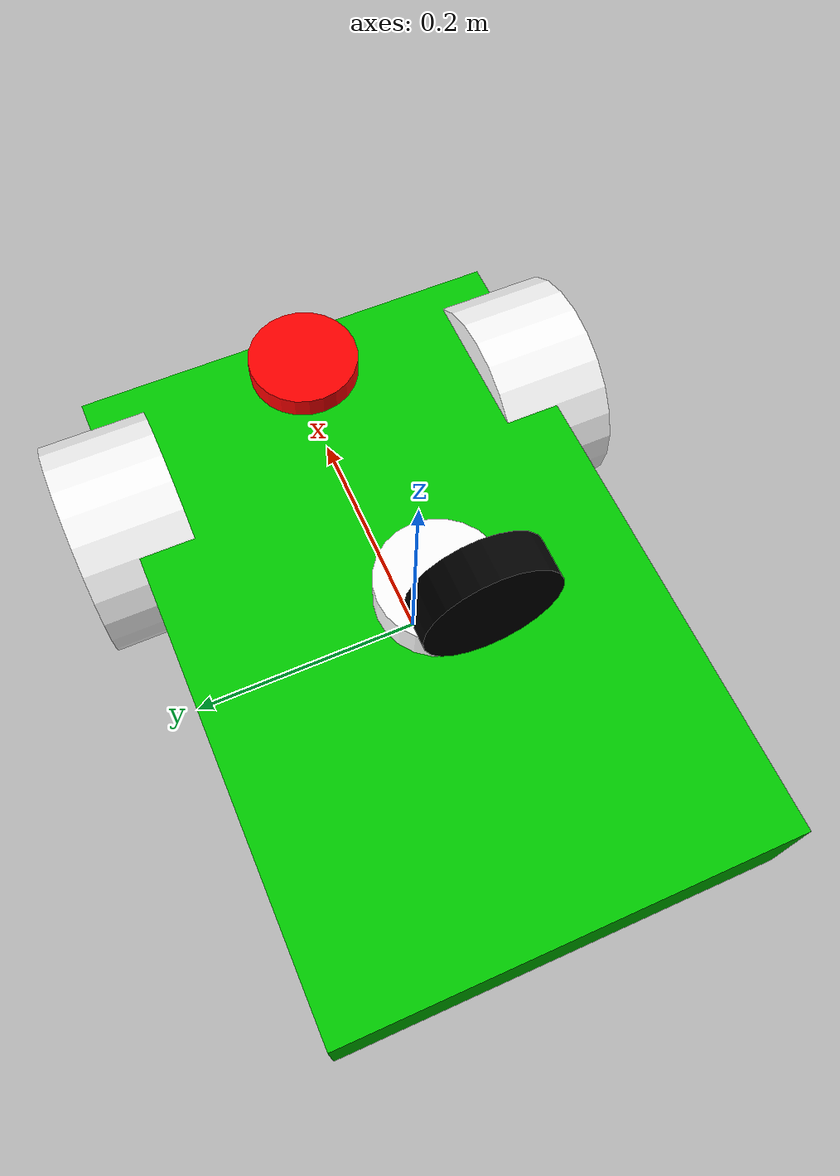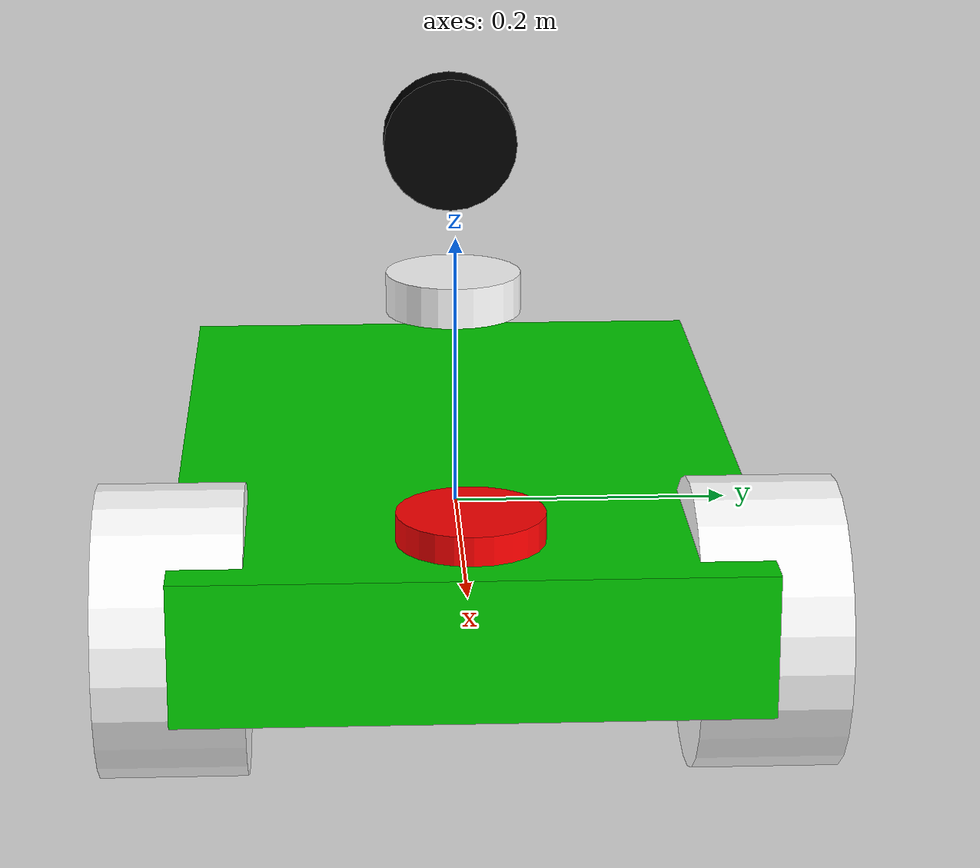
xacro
<?xml version="1.0"?>
<robot name="bot" xmlns:xacro="http://www.ros.org/wiki/xacro" >

    <xacro:include filename="$(find bot_description)/urdf/description.xacro"/>

    <gazebo>
    <!--Differential Drive for Wheels-->
        <plugin name="differential_drive_controller" filename="libgazebo_ros_diff_drive.so">
            <legacyMode>false</legacyMode>
            <alwaysOn>true</alwaysOn>
            <publishWheelTF>true</publishWheelTF>
            <publishTf>1</publishTf>
            <publishWheelJointState>true</publishWheelJointState>
            <updateRate>60.0</updateRate>
            <leftJoint>base_to_left_wheel</leftJoint>
            <rightJoint>base_to_right_wheel</rightJoint>
            <wheelSeparation>0.4</wheelSeparation>
            <wheelDiameter>0.3</wheelDiameter>
            <wheelAcceleration>1</wheelAcceleration>
            <torque>20</torque>
            <commandTopic>/cmd_vel</commandTopic>
            <odometryTopic>odom</odometryTopic>
            <odometryFrame>odom</odometryFrame>
            <robotBaseFrame>base_link</robotBaseFrame>
        </plugin>
    </gazebo>
    <gazebo>
        <!--Transmission for Left Wheel-->
        <transmission name="left_wheel_transmission">
            <type>transmission_interface/SimpleTransmission</type>
            <joint name="base_to_right_wheel">
                <hardwareInterface>hardware_interface/VelocityJointInterface</hardwareInterface>
             </joint>
            <actuator name="left_wheel_actuator">
                <mechanicalReduction>7</mechanicalReduction>
                <hardwareInterface>VelocityJointInterface</hardwareInterface>
             </actuator>
        </transmission>
        <!--Transmission for Right Wheel-->
        <transmission name="right_wheel_transmission">
            <type>transmission_interface/SimpleTransmission</type>
            <joint name="base_to_left_wheel">
                <hardwareInterface>hardware_interface/VelocityJointInterface</hardwareInterface>
             </joint>
            <actuator name="left_wheel_actuator">
                <mechanicalReduction>7</mechanicalReduction>
                <hardwareInterface>VelocityJointInterface</hardwareInterface>
             </actuator>
        </transmission>
    </gazebo>
    <!--IMU Sensor-->
    <gazebo>
        <plugin name="imu_plugin" filename="libgazebo_ros_imu.so">
            <alwaysOn>true</alwaysOn>
            <bodyName>base_link</bodyName>
            <topicName>imu</topicName>
            <serviceName>imu_service</serviceName>
            <gaussianNoise>0.0</gaussianNoise>
            <updateRate>20.0</updateRate>
        </plugin>
    </gazebo>
    <!--Lidar-->
    <gazebo reference="lidar_link">
        <sensor type="gpu_ray" name="lidar">
            <pose>0 0 0 0 0 0</pose>
            <visualize>false</visualize>
            <update_rate>40</update_rate>
            <ray>
                <scan>
                    <horizontal>
                        <samples>720</samples>
                        <resolution>1</resolution>
                        <min_angle>-1.570796</min_angle>
                        <max_angle>1.570796</max_angle>
                    </horizontal>
                </scan>
                <range>
                    <min>0.10</min>
                    <max>30.0</max>
                    <resolution>0.01</resolution>
                </range>
                <noise>
                    <type>gaussian</type>
                    <mean>0.0</mean>
                    <stddev>0.01</stddev>
                </noise>
            </ray>
            <plugin name="gazebo_ros_head_hokuyo_controller" filename="libgazebo_ros_gpu_laser.so">
                <topicName>/laser/scan</topicName>
                <frameName>lidar_link</frameName>
            </plugin>
        </sensor>
  </gazebo>
  <!--Camera-->
    <gazebo reference="camera_link">
        <sensor type="camera" name="camera">
            <update_rate>30.0</update_rate>
            <camera name="head">
                <horizontal_fov>1.3962634</horizontal_fov>
                <image>
                    <width>800</width>
                    <height>800</height>
                    <format>R8G8B8</format>
                </image>
                <clip>
                    <near>0.02</near>
                    <far>300</far>
                </clip>
                <noise>
                    <type>gaussian</type>
                    <mean>0.0</mean>
                    <stddev>0.007</stddev>
                </noise>
            </camera>
            <plugin name="camera_controller" filename="libgazebo_ros_camera.so">
                <alwaysOn>true</alwaysOn>
                <updateRate>0.0</updateRate>
                <cameraName>camera_link</cameraName>
                <imageTopicName>image_raw</imageTopicName>
                <cameraInfoTopicName>camera_info</cameraInfoTopicName>
                <frameName>camera_link</frameName>
                <hackBaseline>0.07</hackBaseline>
                <distortionK1>0.0</distortionK1>
                <distortionK2>0.0</distortionK2>
                <distortionK3>0.0</distortionK3>
                <distortionT1>0.0</distortionT1>
                <distortionT2>0.0</distortionT2>
            </plugin>
        </sensor>
  </gazebo>
</robot>

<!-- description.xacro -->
<robot name="bot" xmlns:xacro="http://wiki.ros.org/xacro">

  <xacro:include filename="$(find bot_description)/urdf/inertials.xacro"/>

  <material name="green">
      <color rgba="0 0.8 0 1"/>
  </material>
  <material name="white">
      <color rgba="1 1 1 1"/>
  </material>
  <material name="red">
      <color rgba="1 0 0 1"/>
  </material>
  <material name="black">
      <color rgba="0 0 0 1"/>
  </material>
  <!--Robot Physics-->
  <link name="base_link">
    <visual>
      <geometry>
        <box size="0.6 0.4 0.10"/>
      </geometry>
      <material name="green"/>
    </visual>
    <collision>
      <geometry>
        <box size="0.6 0.4 0.10"/>
      </geometry>
    </collision>
    <xacro:solid_cuboid_inertial
        rpy="0 0 0" xyz="0 0 0"
        mass="0.2"
        x="0.6" y="0.4" z="0.1"/>
  </link>
  <!--Wheels-->
  <!--Left Wheel-->
  <link name="left_wheel">
    <visual>
      <geometry>
        <cylinder length="0.1" radius="0.1"/>
      </geometry>
      <origin  xyz="0 0 0"/>
      <material name="white"/>
    </visual>
    <collision>
      <geometry>
        <cylinder length="0.1" radius="0.1"/>
      </geometry>
      <origin xyz="0 0 0"/>
    </collision>
    <xacro:solid_cylinder_inertial
        rpy="0 0 0" xyz="0 0 0"
        mass="1" radius="0.15" length="0.1"/>
  </link>
  <!--Right Wheel-->
  <link name="right_wheel">
    <visual>
      <geometry>
        <cylinder length="0.1" radius="0.1"/>
      </geometry>
      <origin xyz="0 0 0"/>
      <material name="white"/>
    </visual>
    <collision>
      <geometry>
        <cylinder length="0.1" radius="0.1"/>
      </geometry>
      <origin  xyz="0 0 0"/>
    </collision>
    <xacro:solid_cylinder_inertial
        rpy="0 0 0" xyz="0 0 0"
        mass="1" radius="0.1" length="0.1"/>
  </link>
  <!--Join Left Wheel-->
  <joint name="base_to_left_wheel" type="continuous">
    <parent link="base_link"/>
    <child link="right_wheel"/>
    <origin rpy="-1.57075 0 0" xyz="0.2 0.2 -0.02"/>
    <axis xyz="0 0 1"/>
  </joint>
  <!--Join Right Wheel-->
  <joint name="base_to_right_wheel" type="continuous">
    <parent link="base_link"/>
    <child link="left_wheel"/>
    <origin rpy="-1.57075 0 0"  xyz="0.2 -0.2 -0.02"/>
    <axis xyz="0 0 1"/>
  </joint>
  <!--Back Sphere-->
  <link name="back_sphere">
    <visual>
      <geometry>
        <sphere radius="0.05"/>
      </geometry>
      <origin rpy="1.57075 0 0" xyz="0 0 0"/>
      <material name="white"/>
    </visual>
    <collision>
      <geometry>
        <sphere radius="0.05"/>
      </geometry>
    </collision>
    <xacro:null_inertial/>
  </link>
  <!--Join Sphere-->
  <joint name="base_to_back_sphere" type="fixed">
    <parent link="base_link"/>
    <child link="back_sphere"/>
    <origin xyz="-0.19 0.0 -0.07"/>
  </joint>
  <!--IMU-->
  <link name="imu_link">
    <visual>
      <geometry>
        <cylinder length="0.02" radius="0.05"/>
      </geometry>
      <origin  xyz="0 0 0"/>
      <material name="red"/>
    </visual>
    <xacro:null_inertial/>
  </link>
  <!--Join IMU-->
  <joint name="base_to_imu" type="fixed">
    <parent link="base_link"/>
    <child link="imu_link"/>
    <origin xyz="0.25 0.0 0.07"/>
  </joint>
  <!--Lidar-->
  <link name="lidar_link">
    <visual>
      <geometry>
        <cylinder length="0.03" radius="0.05"/>
      </geometry>
      <origin  rpy="1.57075 0 1.57075" xyz="0 0 0"/>
      <material name="black"/>
    </visual>
    <xacro:null_inertial/>
  </link>
  <!--Join Lidar-->
  <joint name="base_to_lidar" type="fixed">
    <parent link="base_link"/>
    <child link="lidar_link"/>
    <origin xyz="-0.1 0.0 0.25"/>
  </joint>
  <!--Camera-->
  <link name="camera_link">
    <visual>
      <geometry>
        <cylinder length="0.03" radius="0.05"/>
      </geometry>
      <origin  rpy="0 0 1.57075" xyz="0 0 0"/>
      <material name="white"/>
    </visual>
    <xacro:null_inertial/>
  </link>
  <!--Join Camera-->
  <joint name="base_to_camera" type="fixed">
    <parent link="base_link"/>
    <child link="camera_link"/>
    <origin xyz="-0.04 0.0 0.15"/>
  </joint>
</robot>
